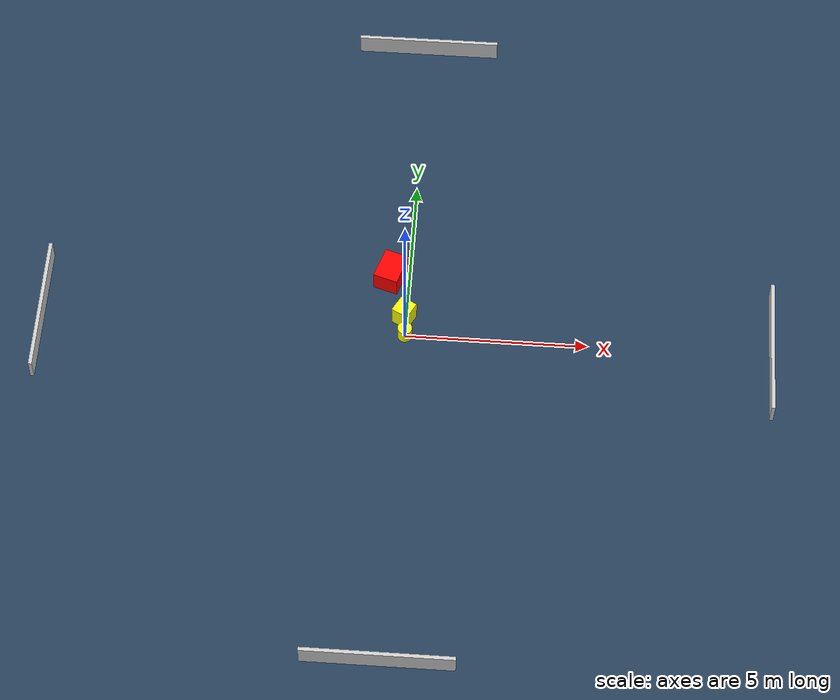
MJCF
<?xml version="1.0" ?>
<mujoco model="generated_environment">
  <option timestep="0.01" integrator="RK4" cone="elliptic"/>
  <default>
    <geom density="1"/>
  </default>
  <asset>
    <texture builtin="gradient" height="3072" name="skybox" rgb1="0.3 0.5 0.7" rgb2="0 0 0" type="skybox" width="512"/>
    <texture builtin="checker" height="300" name="groundplane" rgb1="0.2 0.3 0.4" rgb2="0.1 0.2 0.3" type="2d" width="300"/>
    <material name="groundplane" reflectance="0.2" texrepeat="5 5" texture="groundplane"/>
  </asset>
  <worldbody>
    <light dir="0 0 -1" directional="true" pos="0 0 1.5"/>
    <geom condim="3" friction="0.5 0.005 0.001" material="groundplane" name="floor" pos="0 0 0" size="0 0 0.05" type="plane"/>
    <body name="walls">
      <geom name="wall_1" condim="4" pos="-10.0 0.0 0.3" rgba="0.800000011920929 0.800000011920929 0.800000011920929 1.0" size="0.05 2.0 0.3" type="box"/>
      <geom name="wall_2" condim="4" pos="10.0 0.0 0.3" rgba="0.800000011920929 0.800000011920929 0.800000011920929 1.0" size="0.05 2.0 0.3" type="box"/>
      <geom name="wall_3" condim="4" pos="0.0 -10.0 0.3" rgba="0.800000011920929 0.800000011920929 0.800000011920929 1.0" size="2.0 0.05 0.3" type="box"/>
      <geom name="wall_4" condim="4" pos="0.0 10.0 0.3" rgba="0.800000011920929 0.800000011920929 0.800000011920929 1.0" size="2.0 0.05 0.3" type="box"/>
    </body>
    <body name="robot">
      <joint name="joint_x" type="slide" pos="0 0 0" axis="1 0 0"/>
      <joint name="joint_y" type="slide" pos="0 0 0" axis="0 1 0"/>
      <geom name="robot" type="cylinder" pos="0.0 0.0 0.2" size="0.2 0.2 0.0" mass="5.0" friction="1.0 0.005 0.0001" condim="4" rgba="1.0 1.0 0.0 1.0"/>
    </body>
    <body name="obstacle_1_movable">
      <geom name="obstacle_1_movable" condim="4" pos="-0.05703387438066073 0.55958436389169 0.3" euler="0 0 61.63392162574589" friction="0.0 0.005 0.001" rgba="1.0 1.0 0.0 1.0" size="0.25211909577186997 0.24363394928534782 0.3" type="box" mass="0.1"/>
      <joint type="free"/>
    </body>
    <body name="obstacle_2_static">
      <geom name="obstacle_2_static" condim="4" pos="-0.5109822096530302 1.8994909430269482 0.3" euler="0 0 252.0359619980308" friction="0.0 0.005 0.001" rgba="1.0 0.0 0.0 1.0" size="0.45756968349645 0.3464318992033902 0.3" type="box"/>
    </body>
  </worldbody>
  <actuator>
    <motor name="actuator_x" joint="joint_x" gear="1" ctrlrange="-1 1"/>
    <motor name="actuator_y" joint="joint_y" gear="1" ctrlrange="-1 1"/>
  </actuator>
</mujoco>
